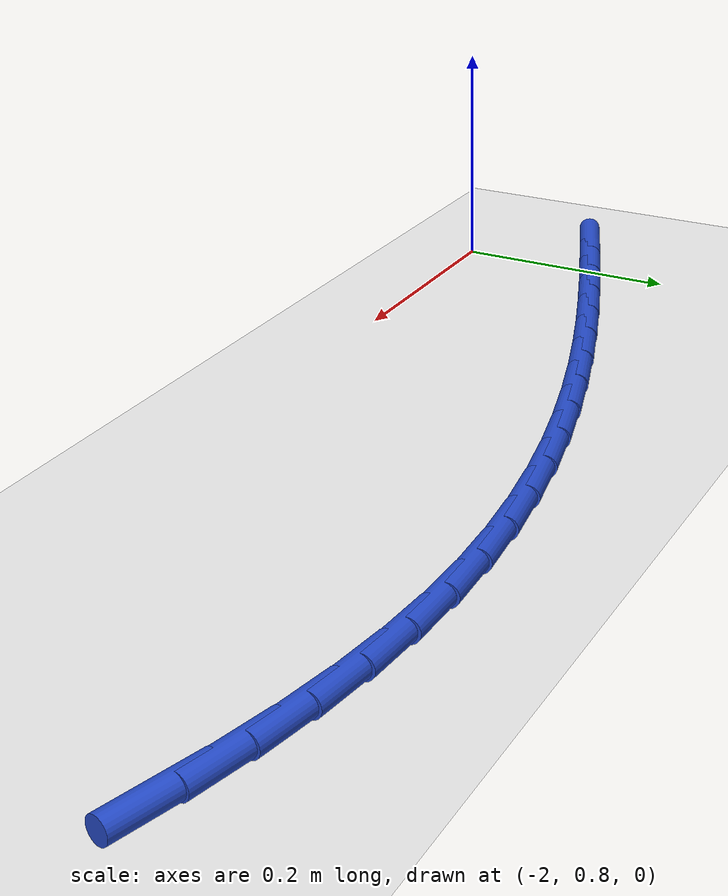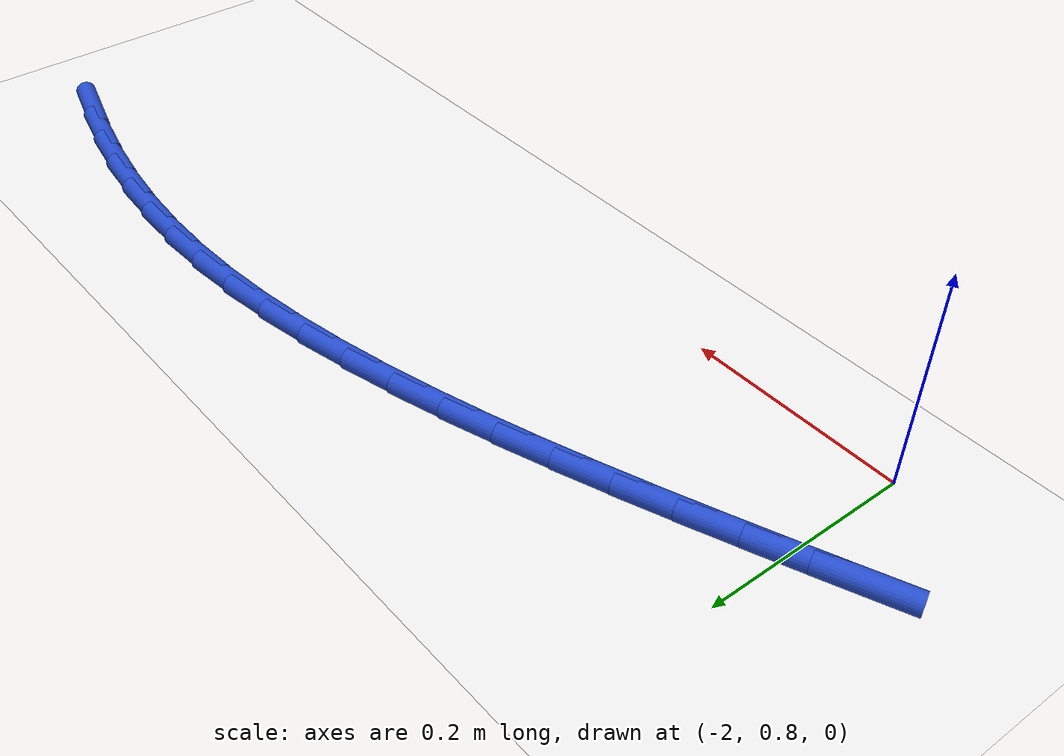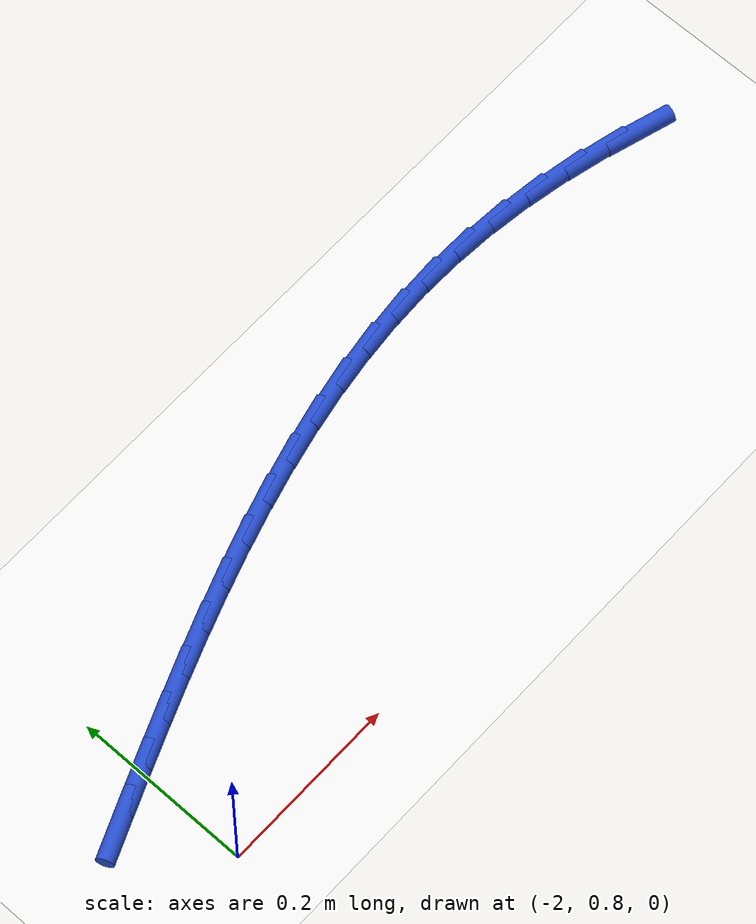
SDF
<sdf version="1.6">
 <world name="default">
  <model name="ground_plane">
   <static>1</static>
   <link name="link">
    <collision name="collision">
     <geometry><plane><normal>0 0 1</normal><size>100 100</size></plane></geometry>
     <surface><friction><ode><mu>100</mu><mu2>50</mu2></ode></friction></surface>
    </collision>
    <visual name="visual">
     <cast_shadows>0</cast_shadows>
     <geometry><plane><normal>0 0 1</normal><size>100 100</size></plane></geometry>
     <material>
      <script><uri>file://media/materials/scripts/gazebo.material</uri><name>Gazebo/WhiteGlow</name></script>
     </material>
    </visual>
   </link>
  </model>
  <model name="line">
   <link name="link_39">
    <pose>-1.1449543375437359 1.0324102569315232 0.01 0 1.57 -0.28739152608124247</pose>
    <collision name="collision">
     <geometry><cylinder><radius>0.01</radius><length>0.08</length></cylinder></geometry>
    </collision>
    <visual name="visual">
     <material>
      <script><name>Gazebo/Blue</name><uri>file://media/materials/scripts/gazebo.material</uri></script>
     </material>
     <geometry><cylinder><radius>0.01</radius><length>0.08</length></cylinder></geometry>
    </visual>
   </link>
   <link name="link_40">
    <pose>-1.1947187816008533 1.0471193441973832 0.01 0 1.57 -0.23681594599336975</pose>
    <collision name="collision">
     <geometry><cylinder><radius>0.01</radius><length>0.08</length></cylinder></geometry>
    </collision>
    <visual name="visual">
     <material>
      <script><name>Gazebo/Blue</name><uri>file://media/materials/scripts/gazebo.material</uri></script>
     </material>
     <geometry><cylinder><radius>0.01</radius><length>0.08</length></cylinder></geometry>
    </visual>
   </link>
   <link name="link_41">
    <pose>-1.2438210704948804 1.0589699156710368 0.01 0 1.57 -0.18299416979295743</pose>
    <collision name="collision">
     <geometry><cylinder><radius>0.01</radius><length>0.08</length></cylinder></geometry>
    </collision>
    <visual name="visual">
     <material>
      <script><name>Gazebo/Blue</name><uri>file://media/materials/scripts/gazebo.material</uri></script>
     </material>
     <geometry><cylinder><radius>0.01</radius><length>0.08</length></cylinder></geometry>
    </visual>
   </link>
   <link name="link_42">
    <pose>-1.2924070415312756 1.0679614560545014 0.01 0 1.57 -0.12649981398423962</pose>
    <collision name="collision">
     <geometry><cylinder><radius>0.01</radius><length>0.08</length></cylinder></geometry>
    </collision>
    <visual name="visual">
     <material>
      <script><name>Gazebo/Blue</name><uri>file://media/materials/scripts/gazebo.material</uri></script>
     </material>
     <geometry><cylinder><radius>0.01</radius><length>0.08</length></cylinder></geometry>
    </visual>
   </link>
   <link name="link_43">
    <pose>-1.3406225320154967 1.0740934500497934 0.01 0 1.57 -0.06807291339887869</pose>
    <collision name="collision">
     <geometry><cylinder><radius>0.01</radius><length>0.08</length></cylinder></geometry>
    </collision>
    <visual name="visual">
     <material>
      <script><name>Gazebo/Blue</name><uri>file://media/materials/scripts/gazebo.material</uri></script>
     </material>
     <geometry><cylinder><radius>0.01</radius><length>0.08</length></cylinder></geometry>
    </visual>
   </link>
   <link name="link_44">
    <pose>-1.3886133792530029 1.0773653823589304 0.01 0 1.57 -0.008606541192220565</pose>
    <collision name="collision">
     <geometry><cylinder><radius>0.01</radius><length>0.08</length></cylinder></geometry>
    </collision>
    <visual name="visual">
     <material>
      <script><name>Gazebo/Blue</name><uri>file://media/materials/scripts/gazebo.material</uri></script>
     </material>
     <geometry><cylinder><radius>0.01</radius><length>0.08</length></cylinder></geometry>
    </visual>
   </link>
   <link name="link_45">
    <pose>-1.4365246318945821 1.077777742709939 0.01 0 1.57 0.049498626090179035</pose>
    <collision name="collision">
     <geometry><cylinder><radius>0.01</radius><length>0.08</length></cylinder></geometry>
    </collision>
    <visual name="visual">
     <material>
      <script><name>Gazebo/Blue</name><uri>file://media/materials/scripts/gazebo.material</uri></script>
     </material>
     <geometry><cylinder><radius>0.01</radius><length>0.08</length></cylinder></geometry>
    </visual>
   </link>
   <link name="link_46">
    <pose>-1.484444187621647 1.0754038514537885 0.01 0 1.57 0.10326179931639413</pose>
    <collision name="collision">
     <geometry><cylinder><radius>0.01</radius><length>0.08</length></cylinder></geometry>
    </collision>
    <visual name="visual">
     <material>
      <script><name>Gazebo/Blue</name><uri>file://media/materials/scripts/gazebo.material</uri></script>
     </material>
     <geometry><cylinder><radius>0.01</radius><length>0.08</length></cylinder></geometry>
    </visual>
   </link>
   <link name="link_47">
    <pose>-1.5323651903711109 1.070437778848447 0.01 0 1.57 0.15229372753024786</pose>
    <collision name="collision">
     <geometry><cylinder><radius>0.01</radius><length>0.08</length></cylinder></geometry>
    </collision>
    <visual name="visual">
     <material>
      <script><name>Gazebo/Blue</name><uri>file://media/materials/scripts/gazebo.material</uri></script>
     </material>
     <geometry><cylinder><radius>0.01</radius><length>0.08</length></cylinder></geometry>
    </visual>
   </link>
   <link name="link_48">
    <pose>-1.5802718668736737 1.0630849588381084 0.01 0 1.57 0.19656833805115623</pose>
    <collision name="collision">
     <geometry><cylinder><radius>0.01</radius><length>0.08</length></cylinder></geometry>
    </collision>
    <visual name="visual">
     <material>
      <script><name>Gazebo/Blue</name><uri>file://media/materials/scripts/gazebo.material</uri></script>
     </material>
     <geometry><cylinder><radius>0.01</radius><length>0.08</length></cylinder></geometry>
    </visual>
   </link>
   <link name="link_49">
    <pose>-1.6281484438600338 1.0535508253669692 0.01 0 1.57 0.2361506753977911</pose>
    <collision name="collision">
     <geometry><cylinder><radius>0.01</radius><length>0.08</length></cylinder></geometry>
    </collision>
    <visual name="visual">
     <material>
      <script><name>Gazebo/Blue</name><uri>file://media/materials/scripts/gazebo.material</uri></script>
     </material>
     <geometry><cylinder><radius>0.01</radius><length>0.08</length></cylinder></geometry>
    </visual>
   </link>
   <link name="link_50">
    <pose>-1.6759791480608908 1.0420408123792244 0.01 0 1.57 0.27116597516490126</pose>
    <collision name="collision">
     <geometry><cylinder><radius>0.01</radius><length>0.08</length></cylinder></geometry>
    </collision>
    <visual name="visual">
     <material>
      <script><name>Gazebo/Blue</name><uri>file://media/materials/scripts/gazebo.material</uri></script>
     </material>
     <geometry><cylinder><radius>0.01</radius><length>0.08</length></cylinder></geometry>
    </visual>
   </link>
   <link name="link_51">
    <pose>-1.7237482062069434 1.0287603538190693 0.01 0 1.57 0.30177334579369913</pose>
    <collision name="collision">
     <geometry><cylinder><radius>0.01</radius><length>0.08</length></cylinder></geometry>
    </collision>
    <visual name="visual">
     <material>
      <script><name>Gazebo/Blue</name><uri>file://media/materials/scripts/gazebo.material</uri></script>
     </material>
     <geometry><cylinder><radius>0.01</radius><length>0.08</length></cylinder></geometry>
    </visual>
   </link>
   <link name="link_52">
    <pose>-1.7714398450288904 1.013914883630699 0.01 0 1.57 0.3281447749035978</pose>
    <collision name="collision">
     <geometry><cylinder><radius>0.01</radius><length>0.08</length></cylinder></geometry>
    </collision>
    <visual name="visual">
     <material>
      <script><name>Gazebo/Blue</name><uri>file://media/materials/scripts/gazebo.material</uri></script>
     </material>
     <geometry><cylinder><radius>0.01</radius><length>0.08</length></cylinder></geometry>
    </visual>
   </link>
   <link name="link_53">
    <pose>-1.8190382912574317 0.9977098357583087 0.01 0 1.57 0.3504491888019872</pose>
    <collision name="collision">
     <geometry><cylinder><radius>0.01</radius><length>0.08</length></cylinder></geometry>
    </collision>
    <visual name="visual">
     <material>
      <script><name>Gazebo/Blue</name><uri>file://media/materials/scripts/gazebo.material</uri></script>
     </material>
     <geometry><cylinder><radius>0.01</radius><length>0.08</length></cylinder></geometry>
    </visual>
   </link>
   <link name="link_54">
    <pose>-1.8665277716232649 0.9803506441460944 0.01 0 1.57 0.36884079617444926</pose>
    <collision name="collision">
     <geometry><cylinder><radius>0.01</radius><length>0.08</length></cylinder></geometry>
    </collision>
    <visual name="visual">
     <material>
      <script><name>Gazebo/Blue</name><uri>file://media/materials/scripts/gazebo.material</uri></script>
     </material>
     <geometry><cylinder><radius>0.01</radius><length>0.08</length></cylinder></geometry>
    </visual>
   </link>
   <link name="link_55">
    <pose>-1.9138925128570894 0.9620427427382504 0.01 0 1.57 0.3834507866975855</pose>
    <collision name="collision">
     <geometry><cylinder><radius>0.01</radius><length>0.08</length></cylinder></geometry>
    </collision>
    <visual name="visual">
     <material>
      <script><name>Gazebo/Blue</name><uri>file://media/materials/scripts/gazebo.material</uri></script>
     </material>
     <geometry><cylinder><radius>0.01</radius><length>0.08</length></cylinder></geometry>
    </visual>
   </link>
   <link name="link_56">
    <pose>-1.9611167416896054 0.9429915654789724 0.01 0 1.57 0.3943814908346376</pose>
    <collision name="collision">
     <geometry><cylinder><radius>0.01</radius><length>0.08</length></cylinder></geometry>
    </collision>
    <visual name="visual">
     <material>
      <script><name>Gazebo/Blue</name><uri>file://media/materials/scripts/gazebo.material</uri></script>
     </material>
     <geometry><cylinder><radius>0.01</radius><length>0.08</length></cylinder></geometry>
    </visual>
   </link>
   <link name="link_57">
    <pose>-2.0081846848515106 0.923402546312456 0.01 0 1.57 0.40170223621884027</pose>
    <collision name="collision">
     <geometry><cylinder><radius>0.01</radius><length>0.08</length></cylinder></geometry>
    </collision>
    <visual name="visual">
     <material>
      <script><name>Gazebo/Blue</name><uri>file://media/materials/scripts/gazebo.material</uri></script>
     </material>
     <geometry><cylinder><radius>0.01</radius><length>0.08</length></cylinder></geometry>
    </visual>
   </link>
   <link name="link_58">
    <pose>-2.0550805690735046 0.903481119182896 0.01 0 1.57 0.4054462970298465</pose>
    <collision name="collision">
     <geometry><cylinder><radius>0.01</radius><length>0.08</length></cylinder></geometry>
    </collision>
    <visual name="visual">
     <material>
      <script><name>Gazebo/Blue</name><uri>file://media/materials/scripts/gazebo.material</uri></script>
     </material>
     <geometry><cylinder><radius>0.01</radius><length>0.08</length></cylinder></geometry>
    </visual>
   </link>
  </model>
 </world>
</sdf>
